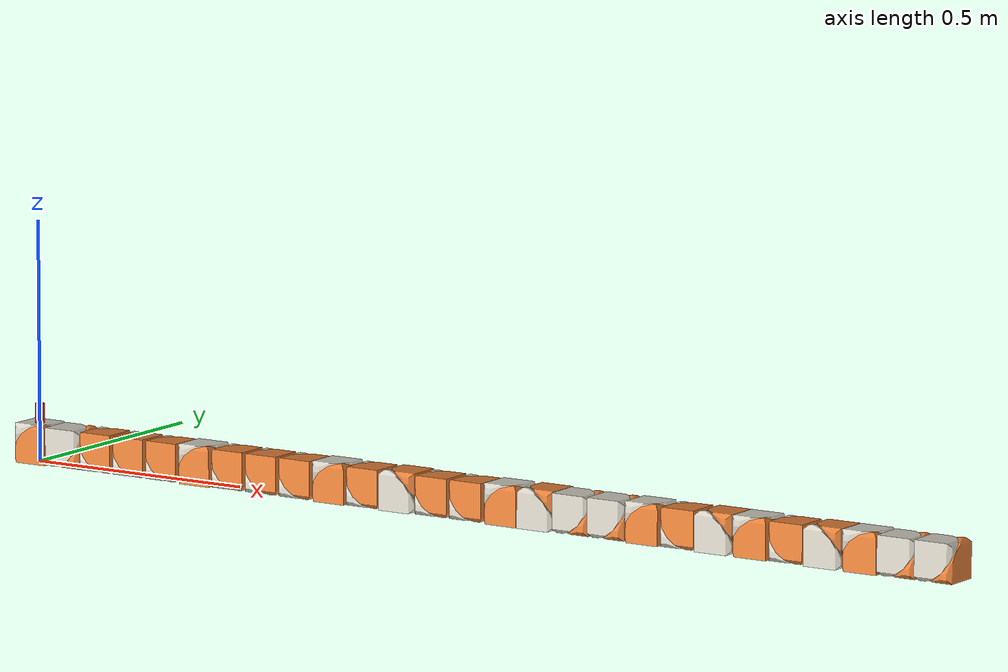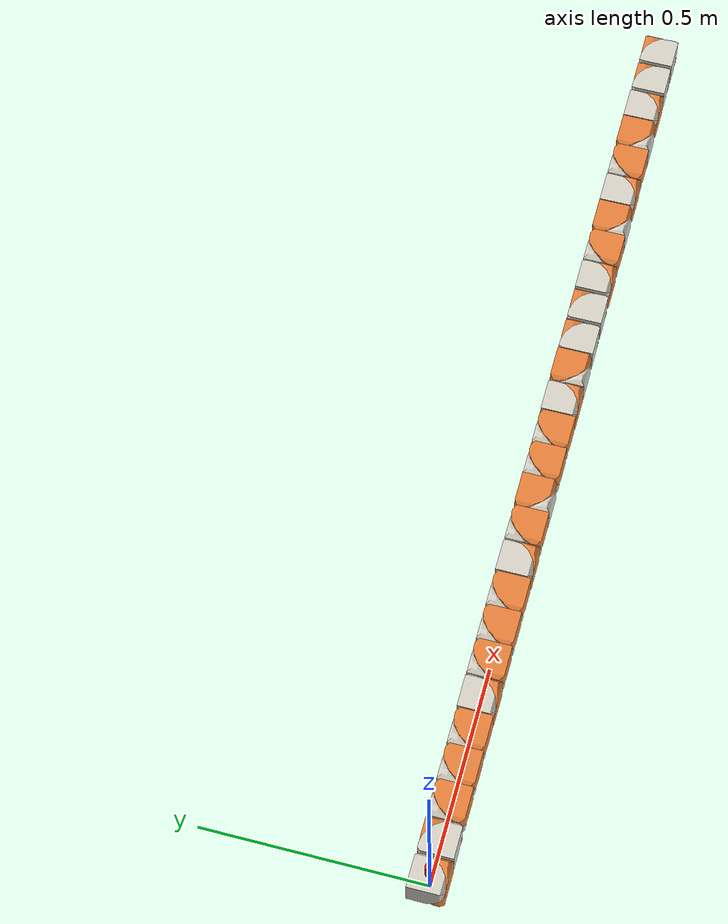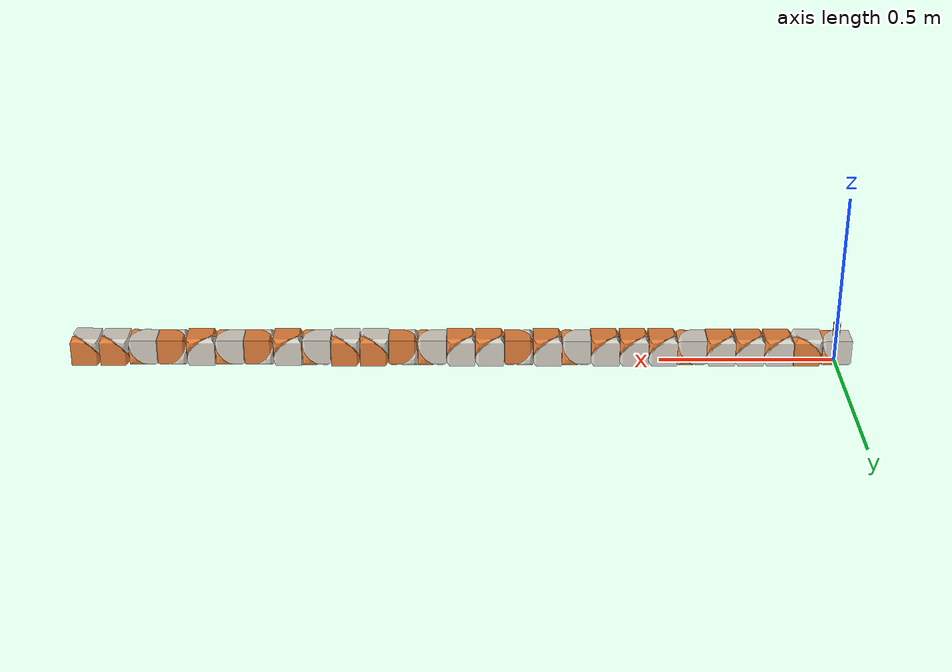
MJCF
<mujoco model="cubot_shipped">
  <compiler angle="radian" meshdir="meshes" autolimits="true"/>
  <option timestep="0.002" integrator="implicitfast"/>

  <default>
    <joint damping="0.05" armature="0.005"/>
    <geom friction="0.8 0.01 0.001"/>
    <default class="still"><geom type="mesh" rgba="0.85 0.83 0.78 1"/></default>
    <default class="moving"><geom type="mesh" rgba="0.91 0.51 0.23 1"/></default>
    <default class="spacer"><geom type="box" rgba="0.45 0.47 0.5 1"/></default>
    <default class="wires"><geom type="cylinder" rgba="0.86 0.15 0.15 1"/></default>
    <default class="servo">
      <!-- a stiff position servo holding whatever detent it is commanded; force-capped at the planner's default -->
      <position kp="30" kv="1" ctrlrange="-2.09440 2.09440" forcerange="-5.8 5.8"/>
    </default>
  </default>

  <asset>
    <mesh name="still" file="still.stl"/>
    <mesh name="moving" file="moving.stl"/>
  </asset>

  <worldbody>
    <!-- laid down rolled 180 deg about +X so module 01's wires stay off the floor -->
    <body name="m01_still" pos="0 0 0.0400" quat="0.00000000 1.00000000 0 0">
      <freejoint name="root"/>
      <inertial pos="-0.01103093 -0.01103093 -0.01103093" mass="0.125" fullinertia="9.83829037e-05 9.83829037e-05 9.83829037e-05 1.31849188e-05 1.31849188e-05 1.31849188e-05"/>
      <geom class="still" mesh="still"/>
      <geom name="wires" class="wires" pos="0 0 -0.0600" size="0.01 0.02"/>
      <body name="m01_moving">
        <joint name="servo01" axis="0.57735027 0.57735027 0.57735027" range="-2.09439510 2.09439510"/>
        <inertial pos="0.01103093 0.01103093 0.01103093" mass="0.125" fullinertia="9.83829037e-05 9.83829037e-05 9.83829037e-05 1.31849188e-05 1.31849188e-05 1.31849188e-05"/>
        <geom class="moving" mesh="moving"/>
        <geom class="spacer" pos="0.041100 0 0" size="0.0011 0.025 0.025"/>
        <body name="m02_still" pos="0.0822 0 0" quat="0.70710678 0.70710678 0 0">
          <inertial pos="-0.01103093 -0.01103093 -0.01103093" mass="0.125" fullinertia="9.83829037e-05 9.83829037e-05 9.83829037e-05 1.31849188e-05 1.31849188e-05 1.31849188e-05"/>
          <geom class="still" mesh="still"/>
          <body name="m02_moving">
            <joint name="servo02" axis="0.57735027 0.57735027 0.57735027" range="-2.09439510 2.09439510"/>
            <inertial pos="0.01103093 0.01103093 0.01103093" mass="0.125" fullinertia="9.83829037e-05 9.83829037e-05 9.83829037e-05 1.31849188e-05 1.31849188e-05 1.31849188e-05"/>
            <geom class="moving" mesh="moving"/>
            <geom class="spacer" pos="0.041100 0 0" size="0.0011 0.025 0.025"/>
            <body name="m03_still" pos="0.0822 0 0" quat="0.00000000 1.00000000 0 0">
              <inertial pos="-0.01103093 -0.01103093 -0.01103093" mass="0.125" fullinertia="9.83829037e-05 9.83829037e-05 9.83829037e-05 1.31849188e-05 1.31849188e-05 1.31849188e-05"/>
              <geom class="still" mesh="still"/>
              <body name="m03_moving">
                <joint name="servo03" axis="0.57735027 0.57735027 0.57735027" range="-2.09439510 2.09439510"/>
                <inertial pos="0.01103093 0.01103093 0.01103093" mass="0.125" fullinertia="9.83829037e-05 9.83829037e-05 9.83829037e-05 1.31849188e-05 1.31849188e-05 1.31849188e-05"/>
                <geom class="moving" mesh="moving"/>
                <geom class="spacer" pos="0.041100 0 0" size="0.0011 0.025 0.025"/>
                <body name="m04_still" pos="0.0822 0 0" quat="1.00000000 0.00000000 0 0">
                  <inertial pos="-0.01103093 -0.01103093 -0.01103093" mass="0.125" fullinertia="9.83829037e-05 9.83829037e-05 9.83829037e-05 1.31849188e-05 1.31849188e-05 1.31849188e-05"/>
                  <geom class="still" mesh="still"/>
                  <body name="m04_moving">
                    <joint name="servo04" axis="0.57735027 0.57735027 0.57735027" range="-2.09439510 2.09439510"/>
                    <inertial pos="0.01103093 0.01103093 0.01103093" mass="0.125" fullinertia="9.83829037e-05 9.83829037e-05 9.83829037e-05 1.31849188e-05 1.31849188e-05 1.31849188e-05"/>
                    <geom class="moving" mesh="moving"/>
                    <geom class="spacer" pos="0.041100 0 0" size="0.0011 0.025 0.025"/>
                    <body name="m05_still" pos="0.0822 0 0" quat="1.00000000 0.00000000 0 0">
                      <inertial pos="-0.01103093 -0.01103093 -0.01103093" mass="0.125" fullinertia="9.83829037e-05 9.83829037e-05 9.83829037e-05 1.31849188e-05 1.31849188e-05 1.31849188e-05"/>
                      <geom class="still" mesh="still"/>
                      <body name="m05_moving">
                        <joint name="servo05" axis="0.57735027 0.57735027 0.57735027" range="-2.09439510 2.09439510"/>
                        <inertial pos="0.01103093 0.01103093 0.01103093" mass="0.125" fullinertia="9.83829037e-05 9.83829037e-05 9.83829037e-05 1.31849188e-05 1.31849188e-05 1.31849188e-05"/>
                        <geom class="moving" mesh="moving"/>
                        <geom class="spacer" pos="0.041100 0 0" size="0.0011 0.025 0.025"/>
                        <body name="m06_still" pos="0.0822 0 0" quat="0.70710678 0.70710678 0 0">
                          <inertial pos="-0.01103093 -0.01103093 -0.01103093" mass="0.125" fullinertia="9.83829037e-05 9.83829037e-05 9.83829037e-05 1.31849188e-05 1.31849188e-05 1.31849188e-05"/>
                          <geom class="still" mesh="still"/>
                          <body name="m06_moving">
                            <joint name="servo06" axis="0.57735027 0.57735027 0.57735027" range="-2.09439510 2.09439510"/>
                            <inertial pos="0.01103093 0.01103093 0.01103093" mass="0.125" fullinertia="9.83829037e-05 9.83829037e-05 9.83829037e-05 1.31849188e-05 1.31849188e-05 1.31849188e-05"/>
                            <geom class="moving" mesh="moving"/>
                            <geom class="spacer" pos="0.041100 0 0" size="0.0011 0.025 0.025"/>
                            <body name="m07_still" pos="0.0822 0 0" quat="-0.70710678 0.70710678 0 0">
                              <inertial pos="-0.01103093 -0.01103093 -0.01103093" mass="0.125" fullinertia="9.83829037e-05 9.83829037e-05 9.83829037e-05 1.31849188e-05 1.31849188e-05 1.31849188e-05"/>
                              <geom class="still" mesh="still"/>
                              <body name="m07_moving">
                                <joint name="servo07" axis="0.57735027 0.57735027 0.57735027" range="-2.09439510 2.09439510"/>
                                <inertial pos="0.01103093 0.01103093 0.01103093" mass="0.125" fullinertia="9.83829037e-05 9.83829037e-05 9.83829037e-05 1.31849188e-05 1.31849188e-05 1.31849188e-05"/>
                                <geom class="moving" mesh="moving"/>
                                <geom class="spacer" pos="0.041100 0 0" size="0.0011 0.025 0.025"/>
                                <body name="m08_still" pos="0.0822 0 0" quat="1.00000000 0.00000000 0 0">
                                  <inertial pos="-0.01103093 -0.01103093 -0.01103093" mass="0.125" fullinertia="9.83829037e-05 9.83829037e-05 9.83829037e-05 1.31849188e-05 1.31849188e-05 1.31849188e-05"/>
                                  <geom class="still" mesh="still"/>
                                  <body name="m08_moving">
                                    <joint name="servo08" axis="0.57735027 0.57735027 0.57735027" range="-2.09439510 2.09439510"/>
                                    <inertial pos="0.01103093 0.01103093 0.01103093" mass="0.125" fullinertia="9.83829037e-05 9.83829037e-05 9.83829037e-05 1.31849188e-05 1.31849188e-05 1.31849188e-05"/>
                                    <geom class="moving" mesh="moving"/>
                                    <geom class="spacer" pos="0.041100 0 0" size="0.0011 0.025 0.025"/>
                                    <body name="m09_still" pos="0.0822 0 0" quat="1.00000000 0.00000000 0 0">
                                      <inertial pos="-0.01103093 -0.01103093 -0.01103093" mass="0.125" fullinertia="9.83829037e-05 9.83829037e-05 9.83829037e-05 1.31849188e-05 1.31849188e-05 1.31849188e-05"/>
                                      <geom class="still" mesh="still"/>
                                      <body name="m09_moving">
                                        <joint name="servo09" axis="0.57735027 0.57735027 0.57735027" range="-2.09439510 2.09439510"/>
                                        <inertial pos="0.01103093 0.01103093 0.01103093" mass="0.125" fullinertia="9.83829037e-05 9.83829037e-05 9.83829037e-05 1.31849188e-05 1.31849188e-05 1.31849188e-05"/>
                                        <geom class="moving" mesh="moving"/>
                                        <geom class="spacer" pos="0.041100 0 0" size="0.0011 0.025 0.025"/>
                                        <body name="m10_still" pos="0.0822 0 0" quat="0.70710678 0.70710678 0 0">
                                          <inertial pos="-0.01103093 -0.01103093 -0.01103093" mass="0.125" fullinertia="9.83829037e-05 9.83829037e-05 9.83829037e-05 1.31849188e-05 1.31849188e-05 1.31849188e-05"/>
                                          <geom class="still" mesh="still"/>
                                          <body name="m10_moving">
                                            <joint name="servo10" axis="0.57735027 0.57735027 0.57735027" range="-2.09439510 2.09439510"/>
                                            <inertial pos="0.01103093 0.01103093 0.01103093" mass="0.125" fullinertia="9.83829037e-05 9.83829037e-05 9.83829037e-05 1.31849188e-05 1.31849188e-05 1.31849188e-05"/>
                                            <geom class="moving" mesh="moving"/>
                                            <geom class="spacer" pos="0.041100 0 0" size="0.0011 0.025 0.025"/>
                                            <body name="m11_still" pos="0.0822 0 0" quat="-0.70710678 0.70710678 0 0">
                                              <inertial pos="-0.01103093 -0.01103093 -0.01103093" mass="0.125" fullinertia="9.83829037e-05 9.83829037e-05 9.83829037e-05 1.31849188e-05 1.31849188e-05 1.31849188e-05"/>
                                              <geom class="still" mesh="still"/>
                                              <body name="m11_moving">
                                                <joint name="servo11" axis="0.57735027 0.57735027 0.57735027" range="-2.09439510 2.09439510"/>
                                                <inertial pos="0.01103093 0.01103093 0.01103093" mass="0.125" fullinertia="9.83829037e-05 9.83829037e-05 9.83829037e-05 1.31849188e-05 1.31849188e-05 1.31849188e-05"/>
                                                <geom class="moving" mesh="moving"/>
                                                <geom class="spacer" pos="0.041100 0 0" size="0.0011 0.025 0.025"/>
                                                <body name="m12_still" pos="0.0822 0 0" quat="-0.70710678 0.70710678 0 0">
                                                  <inertial pos="-0.01103093 -0.01103093 -0.01103093" mass="0.125" fullinertia="9.83829037e-05 9.83829037e-05 9.83829037e-05 1.31849188e-05 1.31849188e-05 1.31849188e-05"/>
                                                  <geom class="still" mesh="still"/>
                                                  <body name="m12_moving">
                                                    <joint name="servo12" axis="0.57735027 0.57735027 0.57735027" range="-2.09439510 2.09439510"/>
                                                    <inertial pos="0.01103093 0.01103093 0.01103093" mass="0.125" fullinertia="9.83829037e-05 9.83829037e-05 9.83829037e-05 1.31849188e-05 1.31849188e-05 1.31849188e-05"/>
                                                    <geom class="moving" mesh="moving"/>
                                                    <geom class="spacer" pos="0.041100 0 0" size="0.0011 0.025 0.025"/>
                                                    <body name="m13_still" pos="0.0822 0 0" quat="0.70710678 0.70710678 0 0">
                                                      <inertial pos="-0.01103093 -0.01103093 -0.01103093" mass="0.125" fullinertia="9.83829037e-05 9.83829037e-05 9.83829037e-05 1.31849188e-05 1.31849188e-05 1.31849188e-05"/>
                                                      <geom class="still" mesh="still"/>
                                                      <body name="m13_moving">
                                                        <joint name="servo13" axis="0.57735027 0.57735027 0.57735027" range="-2.09439510 2.09439510"/>
                                                        <inertial pos="0.01103093 0.01103093 0.01103093" mass="0.125" fullinertia="9.83829037e-05 9.83829037e-05 9.83829037e-05 1.31849188e-05 1.31849188e-05 1.31849188e-05"/>
                                                        <geom class="moving" mesh="moving"/>
                                                        <geom class="spacer" pos="0.041100 0 0" size="0.0011 0.025 0.025"/>
                                                        <body name="m14_still" pos="0.0822 0 0" quat="1.00000000 0.00000000 0 0">
                                                          <inertial pos="-0.01103093 -0.01103093 -0.01103093" mass="0.125" fullinertia="9.83829037e-05 9.83829037e-05 9.83829037e-05 1.31849188e-05 1.31849188e-05 1.31849188e-05"/>
                                                          <geom class="still" mesh="still"/>
                                                          <body name="m14_moving">
                                                            <joint name="servo14" axis="0.57735027 0.57735027 0.57735027" range="-2.09439510 2.09439510"/>
                                                            <inertial pos="0.01103093 0.01103093 0.01103093" mass="0.125" fullinertia="9.83829037e-05 9.83829037e-05 9.83829037e-05 1.31849188e-05 1.31849188e-05 1.31849188e-05"/>
                                                            <geom class="moving" mesh="moving"/>
                                                            <geom class="spacer" pos="0.041100 0 0" size="0.0011 0.025 0.025"/>
                                                            <body name="m15_still" pos="0.0822 0 0" quat="0.70710678 0.70710678 0 0">
                                                              <inertial pos="-0.01103093 -0.01103093 -0.01103093" mass="0.125" fullinertia="9.83829037e-05 9.83829037e-05 9.83829037e-05 1.31849188e-05 1.31849188e-05 1.31849188e-05"/>
                                                              <geom class="still" mesh="still"/>
                                                              <body name="m15_moving">
                                                                <joint name="servo15" axis="0.57735027 0.57735027 0.57735027" range="-2.09439510 2.09439510"/>
                                                                <inertial pos="0.01103093 0.01103093 0.01103093" mass="0.125" fullinertia="9.83829037e-05 9.83829037e-05 9.83829037e-05 1.31849188e-05 1.31849188e-05 1.31849188e-05"/>
                                                                <geom class="moving" mesh="moving"/>
                                                                <geom class="spacer" pos="0.041100 0 0" size="0.0011 0.025 0.025"/>
                                                                <body name="m16_still" pos="0.0822 0 0" quat="0.00000000 1.00000000 0 0">
                                                                  <inertial pos="-0.01103093 -0.01103093 -0.01103093" mass="0.125" fullinertia="9.83829037e-05 9.83829037e-05 9.83829037e-05 1.31849188e-05 1.31849188e-05 1.31849188e-05"/>
                                                                  <geom class="still" mesh="still"/>
                                                                  <body name="m16_moving">
                                                                    <joint name="servo16" axis="0.57735027 0.57735027 0.57735027" range="-2.09439510 2.09439510"/>
                                                                    <inertial pos="0.01103093 0.01103093 0.01103093" mass="0.125" fullinertia="9.83829037e-05 9.83829037e-05 9.83829037e-05 1.31849188e-05 1.31849188e-05 1.31849188e-05"/>
                                                                    <geom class="moving" mesh="moving"/>
                                                                    <geom class="spacer" pos="0.041100 0 0" size="0.0011 0.025 0.025"/>
                                                                    <body name="m17_still" pos="0.0822 0 0" quat="-0.70710678 0.70710678 0 0">
                                                                      <inertial pos="-0.01103093 -0.01103093 -0.01103093" mass="0.125" fullinertia="9.83829037e-05 9.83829037e-05 9.83829037e-05 1.31849188e-05 1.31849188e-05 1.31849188e-05"/>
                                                                      <geom class="still" mesh="still"/>
                                                                      <body name="m17_moving">
                                                                        <joint name="servo17" axis="0.57735027 0.57735027 0.57735027" range="-2.09439510 2.09439510"/>
                                                                        <inertial pos="0.01103093 0.01103093 0.01103093" mass="0.125" fullinertia="9.83829037e-05 9.83829037e-05 9.83829037e-05 1.31849188e-05 1.31849188e-05 1.31849188e-05"/>
                                                                        <geom class="moving" mesh="moving"/>
                                                                        <geom class="spacer" pos="0.041100 0 0" size="0.0011 0.025 0.025"/>
                                                                        <body name="m18_still" pos="0.0822 0 0" quat="1.00000000 0.00000000 0 0">
                                                                          <inertial pos="-0.01103093 -0.01103093 -0.01103093" mass="0.125" fullinertia="9.83829037e-05 9.83829037e-05 9.83829037e-05 1.31849188e-05 1.31849188e-05 1.31849188e-05"/>
                                                                          <geom class="still" mesh="still"/>
                                                                          <body name="m18_moving">
                                                                            <joint name="servo18" axis="0.57735027 0.57735027 0.57735027" range="-2.09439510 2.09439510"/>
                                                                            <inertial pos="0.01103093 0.01103093 0.01103093" mass="0.125" fullinertia="9.83829037e-05 9.83829037e-05 9.83829037e-05 1.31849188e-05 1.31849188e-05 1.31849188e-05"/>
                                                                            <geom class="moving" mesh="moving"/>
                                                                            <geom class="spacer" pos="0.041100 0 0" size="0.0011 0.025 0.025"/>
                                                                            <body name="m19_still" pos="0.0822 0 0" quat="-0.70710678 0.70710678 0 0">
                                                                              <inertial pos="-0.01103093 -0.01103093 -0.01103093" mass="0.125" fullinertia="9.83829037e-05 9.83829037e-05 9.83829037e-05 1.31849188e-05 1.31849188e-05 1.31849188e-05"/>
                                                                              <geom class="still" mesh="still"/>
                                                                              <body name="m19_moving">
                                                                                <joint name="servo19" axis="0.57735027 0.57735027 0.57735027" range="-2.09439510 2.09439510"/>
                                                                                <inertial pos="0.01103093 0.01103093 0.01103093" mass="0.125" fullinertia="9.83829037e-05 9.83829037e-05 9.83829037e-05 1.31849188e-05 1.31849188e-05 1.31849188e-05"/>
                                                                                <geom class="moving" mesh="moving"/>
                                                                                <geom class="spacer" pos="0.041100 0 0" size="0.0011 0.025 0.025"/>
                                                                                <body name="m20_still" pos="0.0822 0 0" quat="-0.70710678 0.70710678 0 0">
                                                                                  <inertial pos="-0.01103093 -0.01103093 -0.01103093" mass="0.125" fullinertia="9.83829037e-05 9.83829037e-05 9.83829037e-05 1.31849188e-05 1.31849188e-05 1.31849188e-05"/>
                                                                                  <geom class="still" mesh="still"/>
                                                                                  <body name="m20_moving">
                                                                                    <joint name="servo20" axis="0.57735027 0.57735027 0.57735027" range="-2.09439510 2.09439510"/>
                                                                                    <inertial pos="0.01103093 0.01103093 0.01103093" mass="0.125" fullinertia="9.83829037e-05 9.83829037e-05 9.83829037e-05 1.31849188e-05 1.31849188e-05 1.31849188e-05"/>
                                                                                    <geom class="moving" mesh="moving"/>
                                                                                    <geom class="spacer" pos="0.041100 0 0" size="0.0011 0.025 0.025"/>
                                                                                    <body name="m21_still" pos="0.0822 0 0" quat="-0.70710678 0.70710678 0 0">
                                                                                      <inertial pos="-0.01103093 -0.01103093 -0.01103093" mass="0.125" fullinertia="9.83829037e-05 9.83829037e-05 9.83829037e-05 1.31849188e-05 1.31849188e-05 1.31849188e-05"/>
                                                                                      <geom class="still" mesh="still"/>
                                                                                      <body name="m21_moving">
                                                                                        <joint name="servo21" axis="0.57735027 0.57735027 0.57735027" range="-2.09439510 2.09439510"/>
                                                                                        <inertial pos="0.01103093 0.01103093 0.01103093" mass="0.125" fullinertia="9.83829037e-05 9.83829037e-05 9.83829037e-05 1.31849188e-05 1.31849188e-05 1.31849188e-05"/>
                                                                                        <geom class="moving" mesh="moving"/>
                                                                                        <geom class="spacer" pos="0.041100 0 0" size="0.0011 0.025 0.025"/>
                                                                                        <body name="m22_still" pos="0.0822 0 0" quat="0.00000000 1.00000000 0 0">
                                                                                          <inertial pos="-0.01103093 -0.01103093 -0.01103093" mass="0.125" fullinertia="9.83829037e-05 9.83829037e-05 9.83829037e-05 1.31849188e-05 1.31849188e-05 1.31849188e-05"/>
                                                                                          <geom class="still" mesh="still"/>
                                                                                          <body name="m22_moving">
                                                                                            <joint name="servo22" axis="0.57735027 0.57735027 0.57735027" range="-2.09439510 2.09439510"/>
                                                                                            <inertial pos="0.01103093 0.01103093 0.01103093" mass="0.125" fullinertia="9.83829037e-05 9.83829037e-05 9.83829037e-05 1.31849188e-05 1.31849188e-05 1.31849188e-05"/>
                                                                                            <geom class="moving" mesh="moving"/>
                                                                                            <geom class="spacer" pos="0.041100 0 0" size="0.0011 0.025 0.025"/>
                                                                                            <body name="m23_still" pos="0.0822 0 0" quat="-0.70710678 0.70710678 0 0">
                                                                                              <inertial pos="-0.01103093 -0.01103093 -0.01103093" mass="0.125" fullinertia="9.83829037e-05 9.83829037e-05 9.83829037e-05 1.31849188e-05 1.31849188e-05 1.31849188e-05"/>
                                                                                              <geom class="still" mesh="still"/>
                                                                                              <body name="m23_moving">
                                                                                                <joint name="servo23" axis="0.57735027 0.57735027 0.57735027" range="-2.09439510 2.09439510"/>
                                                                                                <inertial pos="0.01103093 0.01103093 0.01103093" mass="0.125" fullinertia="9.83829037e-05 9.83829037e-05 9.83829037e-05 1.31849188e-05 1.31849188e-05 1.31849188e-05"/>
                                                                                                <geom class="moving" mesh="moving"/>
                                                                                                <geom class="spacer" pos="0.041100 0 0" size="0.0011 0.025 0.025"/>
                                                                                                <body name="m24_still" pos="0.0822 0 0" quat="-0.70710678 0.70710678 0 0">
                                                                                                  <inertial pos="-0.01103093 -0.01103093 -0.01103093" mass="0.125" fullinertia="9.83829037e-05 9.83829037e-05 9.83829037e-05 1.31849188e-05 1.31849188e-05 1.31849188e-05"/>
                                                                                                  <geom class="still" mesh="still"/>
                                                                                                  <body name="m24_moving">
                                                                                                    <joint name="servo24" axis="0.57735027 0.57735027 0.57735027" range="-2.09439510 2.09439510"/>
                                                                                                    <inertial pos="0.01103093 0.01103093 0.01103093" mass="0.125" fullinertia="9.83829037e-05 9.83829037e-05 9.83829037e-05 1.31849188e-05 1.31849188e-05 1.31849188e-05"/>
                                                                                                    <geom class="moving" mesh="moving"/>
                                                                                                    <geom class="spacer" pos="0.041100 0 0" size="0.0011 0.025 0.025"/>
                                                                                                    <body name="m25_still" pos="0.0822 0 0" quat="0.00000000 1.00000000 0 0">
                                                                                                      <inertial pos="-0.01103093 -0.01103093 -0.01103093" mass="0.125" fullinertia="9.83829037e-05 9.83829037e-05 9.83829037e-05 1.31849188e-05 1.31849188e-05 1.31849188e-05"/>
                                                                                                      <geom class="still" mesh="still"/>
                                                                                                      <body name="m25_moving">
                                                                                                        <joint name="servo25" axis="0.57735027 0.57735027 0.57735027" range="-2.09439510 2.09439510"/>
                                                                                                        <inertial pos="0.01103093 0.01103093 0.01103093" mass="0.125" fullinertia="9.83829037e-05 9.83829037e-05 9.83829037e-05 1.31849188e-05 1.31849188e-05 1.31849188e-05"/>
                                                                                                        <geom class="moving" mesh="moving"/>
                                                                                                        <geom class="spacer" pos="0.041100 0 0" size="0.0011 0.025 0.025"/>
                                                                                                        <body name="m26_still" pos="0.0822 0 0" quat="0.70710678 0.70710678 0 0">
                                                                                                          <inertial pos="-0.01103093 -0.01103093 -0.01103093" mass="0.125" fullinertia="9.83829037e-05 9.83829037e-05 9.83829037e-05 1.31849188e-05 1.31849188e-05 1.31849188e-05"/>
                                                                                                          <geom class="still" mesh="still"/>
                                                                                                          <body name="m26_moving">
                                                                                                            <joint name="servo26" axis="0.57735027 0.57735027 0.57735027" range="-2.09439510 2.09439510"/>
                                                                                                            <inertial pos="0.01103093 0.01103093 0.01103093" mass="0.125" fullinertia="9.83829037e-05 9.83829037e-05 9.83829037e-05 1.31849188e-05 1.31849188e-05 1.31849188e-05"/>
                                                                                                            <geom class="moving" mesh="moving"/>
                                                                                                            <geom class="spacer" pos="0.041100 0 0" size="0.0011 0.025 0.025"/>
                                                                                                            <body name="m27_still" pos="0.0822 0 0" quat="1.00000000 0.00000000 0 0">
                                                                                                              <inertial pos="-0.01103093 -0.01103093 -0.01103093" mass="0.125" fullinertia="9.83829037e-05 9.83829037e-05 9.83829037e-05 1.31849188e-05 1.31849188e-05 1.31849188e-05"/>
                                                                                                              <geom class="still" mesh="still"/>
                                                                                                              <body name="m27_moving">
                                                                                                                <joint name="servo27" axis="0.57735027 0.57735027 0.57735027" range="-2.09439510 2.09439510"/>
                                                                                                                <inertial pos="0.01103093 0.01103093 0.01103093" mass="0.125" fullinertia="9.83829037e-05 9.83829037e-05 9.83829037e-05 1.31849188e-05 1.31849188e-05 1.31849188e-05"/>
                                                                                                                <geom class="moving" mesh="moving"/>
                                                                                                              </body>
                                                                                                            </body>
                                                                                                          </body>
                                                                                                        </body>
                                                                                                      </body>
                                                                                                    </body>
                                                                                                  </body>
                                                                                                </body>
                                                                                              </body>
                                                                                            </body>
                                                                                          </body>
                                                                                        </body>
                                                                                      </body>
                                                                                    </body>
                                                                                  </body>
                                                                                </body>
                                                                              </body>
                                                                            </body>
                                                                          </body>
                                                                        </body>
                                                                      </body>
                                                                    </body>
                                                                  </body>
                                                                </body>
                                                              </body>
                                                            </body>
                                                          </body>
                                                        </body>
                                                      </body>
                                                    </body>
                                                  </body>
                                                </body>
                                              </body>
                                            </body>
                                          </body>
                                        </body>
                                      </body>
                                    </body>
                                  </body>
                                </body>
                              </body>
                            </body>
                          </body>
                        </body>
                      </body>
                    </body>
                  </body>
                </body>
              </body>
            </body>
          </body>
        </body>
      </body>
    </body>
  </worldbody>

  <actuator>
    <position class="servo" name="servo01" joint="servo01"/>
    <position class="servo" name="servo02" joint="servo02"/>
    <position class="servo" name="servo03" joint="servo03"/>
    <position class="servo" name="servo04" joint="servo04"/>
    <position class="servo" name="servo05" joint="servo05"/>
    <position class="servo" name="servo06" joint="servo06"/>
    <position class="servo" name="servo07" joint="servo07"/>
    <position class="servo" name="servo08" joint="servo08"/>
    <position class="servo" name="servo09" joint="servo09"/>
    <position class="servo" name="servo10" joint="servo10"/>
    <position class="servo" name="servo11" joint="servo11"/>
    <position class="servo" name="servo12" joint="servo12"/>
    <position class="servo" name="servo13" joint="servo13"/>
    <position class="servo" name="servo14" joint="servo14"/>
    <position class="servo" name="servo15" joint="servo15"/>
    <position class="servo" name="servo16" joint="servo16"/>
    <position class="servo" name="servo17" joint="servo17"/>
    <position class="servo" name="servo18" joint="servo18"/>
    <position class="servo" name="servo19" joint="servo19"/>
    <position class="servo" name="servo20" joint="servo20"/>
    <position class="servo" name="servo21" joint="servo21"/>
    <position class="servo" name="servo22" joint="servo22"/>
    <position class="servo" name="servo23" joint="servo23"/>
    <position class="servo" name="servo24" joint="servo24"/>
    <position class="servo" name="servo25" joint="servo25"/>
    <position class="servo" name="servo26" joint="servo26"/>
    <position class="servo" name="servo27" joint="servo27"/>
  </actuator>
</mujoco>
